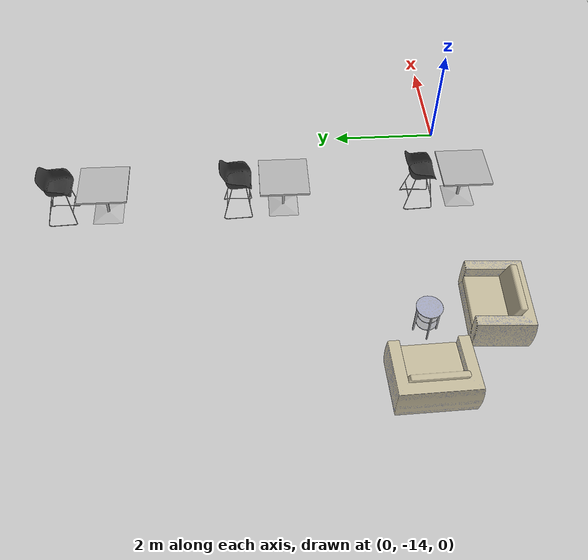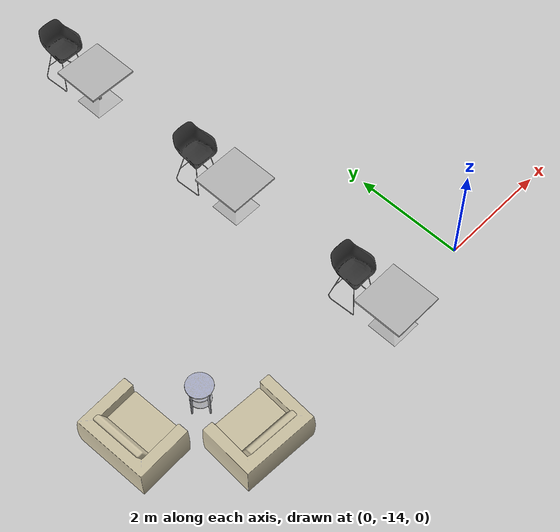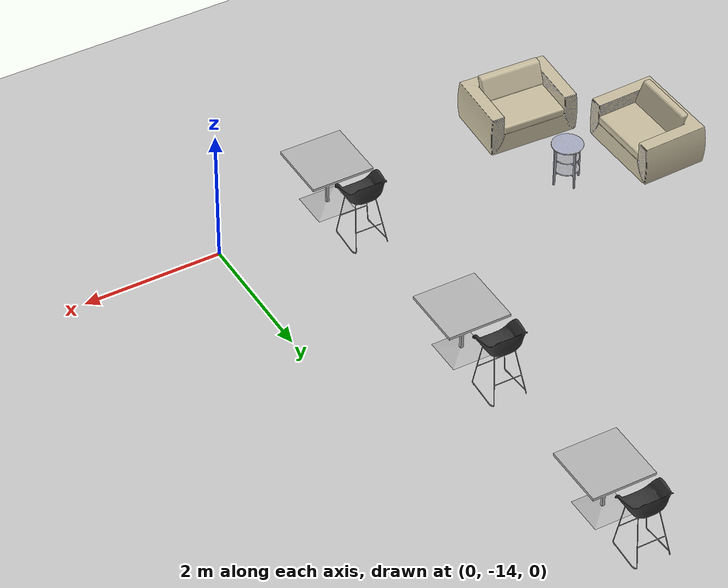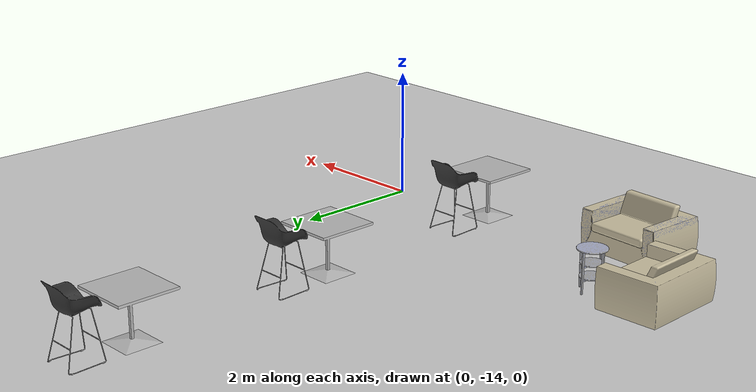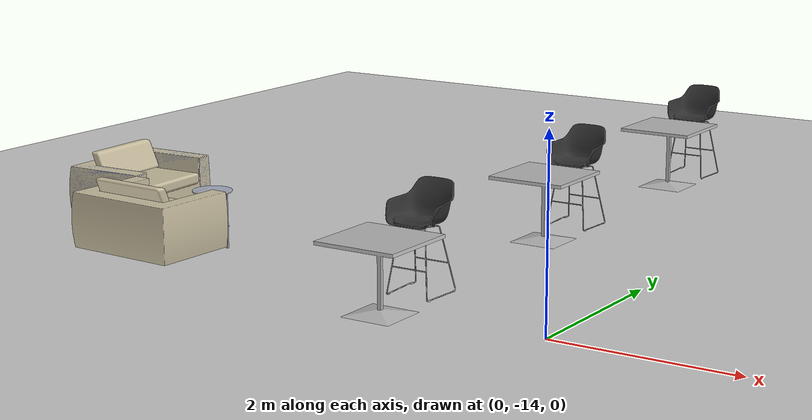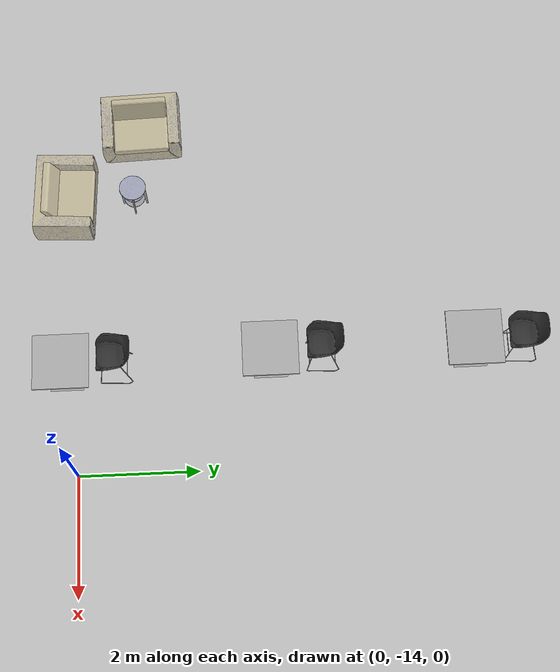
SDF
<sdf version="1.6">
 <world name="default">
  <light name="sun" type="directional">
   <pose>0 0 10 0 -0 0</pose>
   <diffuse>0.8 0.8 0.8 1</diffuse>
   <specular>0.2 0.2 0.2 1</specular>
   <attenuation>
    <range>1000</range>
    <constant>0.9</constant>
    <linear>0.01</linear>
    <quadratic>0.001</quadratic>
   </attenuation>
   <direction>-0.5 0.1 -0.9</direction>
  </light>
  <model name="ground_plane">
   <static>1</static>
   <link name="link">
    <collision name="collision">
     <geometry><plane><normal>0 0 1</normal><size>100 100</size></plane></geometry>
     <surface><friction><ode><mu>100</mu><mu2>50</mu2></ode></friction></surface>
    </collision>
    <visual name="visual">
     <cast_shadows>0</cast_shadows>
     <geometry><plane><normal>0 0 1</normal><size>100 100</size></plane></geometry>
     <material>
      <script><uri>file://media/materials/scripts/gazebo.material</uri><name>Gazebo/Grey</name></script>
     </material>
    </visual>
   </link>
  </model>
  <gravity>0 0 -9.8</gravity>
  <magnetic_field>6e-06 2.3e-05 -4.2e-05</magnetic_field>
  <atmosphere type="adiabatic"/>
  <physics name="default_physics" default="0" type="ode">
   <max_step_size>0.001</max_step_size>
   <real_time_factor>1</real_time_factor>
   <real_time_update_rate>1000</real_time_update_rate>
  </physics>
  <scene><ambient>0.4 0.4 0.4 1</ambient><background>0.7 0.7 0.7 1</background><shadows>1</shadows></scene>
  <audio><device>default</device></audio>
  <spherical_coordinates>
   <surface_model>EARTH_WGS84</surface_model>
   <latitude_deg>0</latitude_deg>
   <longitude_deg>0</longitude_deg>
   <elevation>0</elevation>
   <heading_deg>0</heading_deg>
  </spherical_coordinates>
  <model name="cafe_table">
   <static>1</static>
   <link name="link">
    <collision name="surface">
     <pose>0 0 0.755 0 -0 0</pose>
     <geometry><box><size>0.913 0.913 0.04</size></box></geometry>
    </collision>
    <collision name="column">
     <pose>0 0 0.37 0 -0 0</pose>
     <geometry><box><size>0.042 0.042 0.74</size></box></geometry>
    </collision>
    <collision name="base">
     <pose>0 0 0.02 0 -0 0</pose>
     <geometry><box><size>0.56 0.56 0.04</size></box></geometry>
    </collision>
    <visual name="visual">
     <geometry><mesh><uri>model://cafe_table/meshes/cafe_table.dae</uri></mesh></geometry>
    </visual>
   </link>
   <pose>-1.8682 -7.45409 0 0 -0 0</pose>
  </model>
  <model name="cafe_table_0">
   <static>1</static>
   <link name="link">
    <collision name="surface">
     <pose>0 0 0.755 0 -0 0</pose>
     <geometry><box><size>0.913 0.913 0.04</size></box></geometry>
    </collision>
    <collision name="column">
     <pose>0 0 0.37 0 -0 0</pose>
     <geometry><box><size>0.042 0.042 0.74</size></box></geometry>
    </collision>
    <collision name="base">
     <pose>0 0 0.02 0 -0 0</pose>
     <geometry><box><size>0.56 0.56 0.04</size></box></geometry>
    </collision>
    <visual name="visual">
     <geometry><mesh><uri>model://cafe_table/meshes/cafe_table.dae</uri></mesh></geometry>
    </visual>
   </link>
   <pose>-1.82576 -10.7895 0 0 -0 0</pose>
  </model>
  <model name="cafe_table_1">
   <static>1</static>
   <link name="link">
    <collision name="surface">
     <pose>0 0 0.755 0 -0 0</pose>
     <geometry><box><size>0.913 0.913 0.04</size></box></geometry>
    </collision>
    <collision name="column">
     <pose>0 0 0.37 0 -0 0</pose>
     <geometry><box><size>0.042 0.042 0.74</size></box></geometry>
    </collision>
    <collision name="base">
     <pose>0 0 0.02 0 -0 0</pose>
     <geometry><box><size>0.56 0.56 0.04</size></box></geometry>
    </collision>
    <visual name="visual">
     <geometry><mesh><uri>model://cafe_table/meshes/cafe_table.dae</uri></mesh></geometry>
    </visual>
   </link>
   <pose>-1.74237 -14.1884 0 0 -0 0</pose>
  </model>
  <model name="kitchen_chair">
   <link name="link_3">
    <pose>0.000751 0.001965 0 0 -0 0</pose>
    <visual name="visual">
     <geometry><mesh><uri>model://kitchen_chair/meshes/base.dae</uri><scale>1 1 1</scale></mesh></geometry>
     <material>
      <lighting>1</lighting>
      <ambient>0.7 0.7 0.7 1</ambient>
      <diffuse>0.7 0.7 0.7 1</diffuse>
      <specular>0.01 0.01 0.01 1</specular>
      <emissive>0 0 0 1</emissive>
      <shader type="vertex"><normal_map>__default__</normal_map></shader>
     </material>
    </visual>
    <collision name="collision">
     <geometry><mesh><uri>model://kitchen_chair/meshes/base.dae</uri><scale>1 1 1</scale></mesh></geometry>
    </collision>
   </link>
   <link name="link_4">
    <pose>-0.000751 -0.001965 0 0 -0 0</pose>
    <visual name="visual">
     <geometry><mesh><uri>model://kitchen_chair/meshes/seat.dae</uri><scale>1 1 1</scale></mesh></geometry>
     <material>
      <lighting>1</lighting>
      <ambient>0 0 0 1</ambient>
      <diffuse>0.2 0.2 0.2 1</diffuse>
      <specular>0.01 0.01 0.01 1</specular>
      <emissive>0 0 0 1</emissive>
      <shader type="vertex"><normal_map>__default__</normal_map></shader>
     </material>
    </visual>
    <collision name="collision">
     <geometry><mesh><uri>model://kitchen_chair/meshes/seat.dae</uri><scale>1 1 1</scale></mesh></geometry>
    </collision>
   </link>
   <static>1</static>
   <pose>-1.80889 -13.3281 0.00929 0 -0 0</pose>
  </model>
  <model name="kitchen_chair_0">
   <link name="link_3">
    <pose>0.000751 0.001965 0 0 -0 0</pose>
    <visual name="visual">
     <geometry><mesh><uri>model://kitchen_chair/meshes/base.dae</uri><scale>1 1 1</scale></mesh></geometry>
     <material>
      <lighting>1</lighting>
      <ambient>0.7 0.7 0.7 1</ambient>
      <diffuse>0.7 0.7 0.7 1</diffuse>
      <specular>0.01 0.01 0.01 1</specular>
      <emissive>0 0 0 1</emissive>
      <shader type="vertex"><normal_map>__default__</normal_map></shader>
     </material>
    </visual>
    <collision name="collision">
     <geometry><mesh><uri>model://kitchen_chair/meshes/base.dae</uri><scale>1 1 1</scale></mesh></geometry>
    </collision>
   </link>
   <link name="link_4">
    <pose>-0.000751 -0.001965 0 0 -0 0</pose>
    <visual name="visual">
     <geometry><mesh><uri>model://kitchen_chair/meshes/seat.dae</uri><scale>1 1 1</scale></mesh></geometry>
     <material>
      <lighting>1</lighting>
      <ambient>0 0 0 1</ambient>
      <diffuse>0.2 0.2 0.2 1</diffuse>
      <specular>0.01 0.01 0.01 1</specular>
      <emissive>0 0 0 1</emissive>
      <shader type="vertex"><normal_map>__default__</normal_map></shader>
     </material>
    </visual>
    <collision name="collision">
     <geometry><mesh><uri>model://kitchen_chair/meshes/seat.dae</uri><scale>1 1 1</scale></mesh></geometry>
    </collision>
   </link>
   <static>1</static>
   <pose>-1.87666 -9.89659 0 0 -0 0</pose>
  </model>
  <model name="kitchen_chair_1">
   <link name="link_3">
    <pose>0.000751 0.001965 0 0 -0 0</pose>
    <visual name="visual">
     <geometry><mesh><uri>model://kitchen_chair/meshes/base.dae</uri><scale>1 1 1</scale></mesh></geometry>
     <material>
      <lighting>1</lighting>
      <ambient>0.7 0.7 0.7 1</ambient>
      <diffuse>0.7 0.7 0.7 1</diffuse>
      <specular>0.01 0.01 0.01 1</specular>
      <emissive>0 0 0 1</emissive>
      <shader type="vertex"><normal_map>__default__</normal_map></shader>
     </material>
    </visual>
    <collision name="collision">
     <geometry><mesh><uri>model://kitchen_chair/meshes/base.dae</uri><scale>1 1 1</scale></mesh></geometry>
    </collision>
   </link>
   <link name="link_4">
    <pose>-0.000751 -0.001965 0 0 -0 0</pose>
    <visual name="visual">
     <geometry><mesh><uri>model://kitchen_chair/meshes/seat.dae</uri><scale>1 1 1</scale></mesh></geometry>
     <material>
      <lighting>1</lighting>
      <ambient>0 0 0 1</ambient>
      <diffuse>0.2 0.2 0.2 1</diffuse>
      <specular>0.01 0.01 0.01 1</specular>
      <emissive>0 0 0 1</emissive>
      <shader type="vertex"><normal_map>__default__</normal_map></shader>
     </material>
    </visual>
    <collision name="collision">
     <geometry><mesh><uri>model://kitchen_chair/meshes/seat.dae</uri><scale>1 1 1</scale></mesh></geometry>
    </collision>
   </link>
   <static>1</static>
   <pose>-1.90272 -6.59352 0 0 -0 0</pose>
  </model>
  <model name="chair_set_2">
   <link name="link_10">
    <pose>0.020402 -0.647852 0 0 -0 0</pose>
    <visual name="visual">
     <geometry><mesh><uri>model://chair_set_2/meshes/chair_frame.dae</uri><scale>1 1 1</scale></mesh></geometry>
     <material>
      <script>
       <uri>model://chair_set_2/materials/scripts</uri>
       <uri>model://chair_set_2/materials/textures</uri>
       <name>chair_set_2</name>
      </script>
     </material>
    </visual>
    <collision name="collision">
     <geometry><mesh><uri>model://chair_set_2/meshes/chair_frame.dae</uri><scale>1 1 1</scale></mesh></geometry>
    </collision>
   </link>
   <link name="link_11">
    <pose>0.015343 -0.628735 0 0 -0 0</pose>
    <visual name="visual">
     <geometry><mesh><uri>model://chair_set_2/meshes/chair_cushions.dae</uri><scale>1 1 1</scale></mesh></geometry>
     <material>
      <script>
       <uri>model://chair_set_2/materials/scripts</uri>
       <uri>model://chair_set_2/materials/textures</uri>
       <name>chair_set_2</name>
      </script>
     </material>
    </visual>
    <collision name="collision">
     <geometry><mesh><uri>model://chair_set_2/meshes/chair_cushions.dae</uri><scale>1 1 1</scale></mesh></geometry>
    </collision>
   </link>
   <static>1</static>
   <pose>-5.98186 -12.8417 0.18474 0 -0 1.60499</pose>
  </model>
  <model name="chair_set_2_0">
   <link name="link_10">
    <pose>0.020402 -0.647852 0 0 -0 0</pose>
    <visual name="visual">
     <geometry><mesh><uri>model://chair_set_2/meshes/chair_frame.dae</uri><scale>1 1 1</scale></mesh></geometry>
     <material>
      <script>
       <uri>model://chair_set_2/materials/scripts</uri>
       <uri>model://chair_set_2/materials/textures</uri>
       <name>chair_set_2</name>
      </script>
     </material>
    </visual>
    <collision name="collision">
     <geometry><mesh><uri>model://chair_set_2/meshes/chair_frame.dae</uri><scale>1 1 1</scale></mesh></geometry>
    </collision>
   </link>
   <link name="link_11">
    <pose>0.015343 -0.628735 0 0 -0 0</pose>
    <visual name="visual">
     <geometry><mesh><uri>model://chair_set_2/meshes/chair_cushions.dae</uri><scale>1 1 1</scale></mesh></geometry>
     <material>
      <script>
       <uri>model://chair_set_2/materials/scripts</uri>
       <uri>model://chair_set_2/materials/textures</uri>
       <name>chair_set_2</name>
      </script>
     </material>
    </visual>
    <collision name="collision">
     <geometry><mesh><uri>model://chair_set_2/meshes/chair_cushions.dae</uri><scale>1 1 1</scale></mesh></geometry>
    </collision>
   </link>
   <static>1</static>
   <pose>-4.72139 -14.1361 0.224344 0 -0 3.09285</pose>
  </model>
  <model name="side_table_1">
   <link name="link_1">
    <pose>0.007786 -0.167928 0 0 -0 0</pose>
    <visual name="visual">
     <geometry><mesh><uri>model://side_table_1/meshes/middle.dae</uri><scale>1 1 1</scale></mesh></geometry>
     <material>
      <script>
       <uri>model://side_table_1/materials/scripts</uri>
       <uri>model://side_table_1/materials/textures</uri>
       <name>side_table_1</name>
      </script>
     </material>
    </visual>
    <collision name="collision">
     <geometry><mesh><uri>model://side_table_1/meshes/middle.dae</uri><scale>1 1 1</scale></mesh></geometry>
    </collision>
   </link>
   <link name="link_2">
    <pose>0.007887 -0.167821 0 0 -0 0</pose>
    <visual name="visual">
     <geometry><mesh><uri>model://side_table_1/meshes/leg.dae</uri><scale>1 1 1</scale></mesh></geometry>
     <material>
      <script>
       <uri>model://side_table_1/materials/scripts</uri>
       <uri>model://side_table_1/materials/textures</uri>
       <name>side_table_1</name>
      </script>
     </material>
    </visual>
    <collision name="collision">
     <geometry><mesh><uri>model://side_table_1/meshes/leg.dae</uri><scale>1 1 1</scale></mesh></geometry>
    </collision>
   </link>
   <link name="link_2_clone">
    <pose>0.208023 0.051865 0 0 -0 1.57</pose>
    <visual name="visual">
     <geometry><mesh><uri>model://side_table_1/meshes/leg.dae</uri><scale>1 1 1</scale></mesh></geometry>
     <material>
      <script>
       <uri>model://side_table_1/materials/scripts</uri>
       <uri>model://side_table_1/materials/textures</uri>
       <name>side_table_1</name>
      </script>
     </material>
    </visual>
    <collision name="collision">
     <geometry><mesh><uri>model://side_table_1/meshes/leg.dae</uri><scale>1 1 1</scale></mesh></geometry>
    </collision>
   </link>
   <link name="link_2_clone_0">
    <pose>-0.212235 0.031759 0 0 0 -1.57</pose>
    <visual name="visual">
     <geometry><mesh><uri>model://side_table_1/meshes/leg.dae</uri><scale>1 1 1</scale></mesh></geometry>
     <material>
      <script>
       <uri>model://side_table_1/materials/scripts</uri>
       <uri>model://side_table_1/materials/textures</uri>
       <name>side_table_1</name>
      </script>
     </material>
    </visual>
    <collision name="collision">
     <geometry><mesh><uri>model://side_table_1/meshes/leg.dae</uri><scale>1 1 1</scale></mesh></geometry>
    </collision>
   </link>
   <link name="link_2_clone_clone">
    <pose>-0.011459 0.252125 0 0 -0 3.14</pose>
    <visual name="visual">
     <geometry><mesh><uri>model://side_table_1/meshes/leg.dae</uri><scale>1 1 1</scale></mesh></geometry>
     <material>
      <script>
       <uri>model://side_table_1/materials/scripts</uri>
       <uri>model://side_table_1/materials/textures</uri>
       <name>side_table_1</name>
      </script>
     </material>
    </visual>
    <collision name="collision">
     <geometry><mesh><uri>model://side_table_1/meshes/leg.dae</uri><scale>1 1 1</scale></mesh></geometry>
    </collision>
   </link>
   <static>1</static>
   <pose>-4.80229 -13.0474 0 0 -0 0</pose>
  </model>
 </world>
</sdf>
